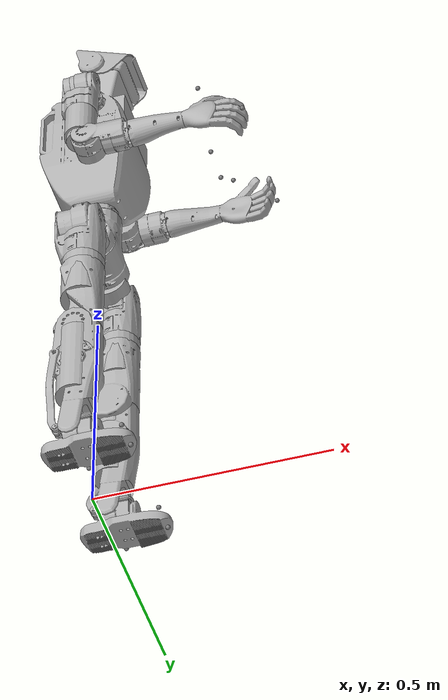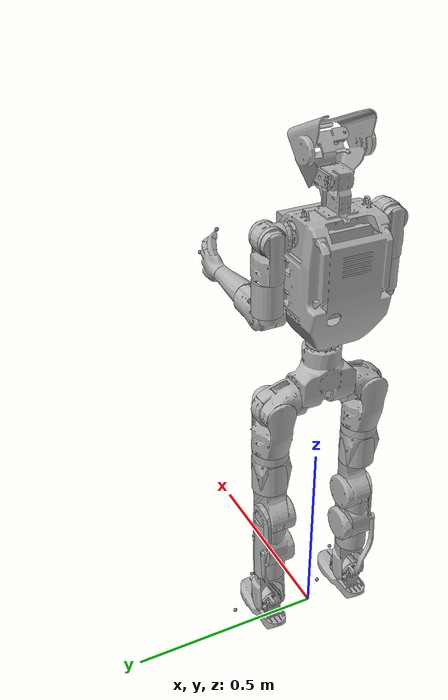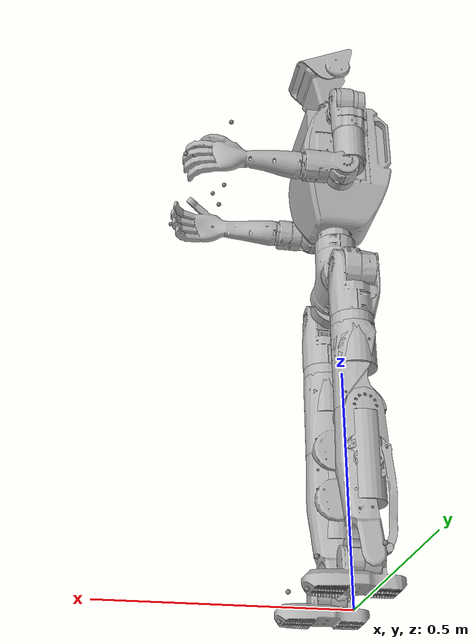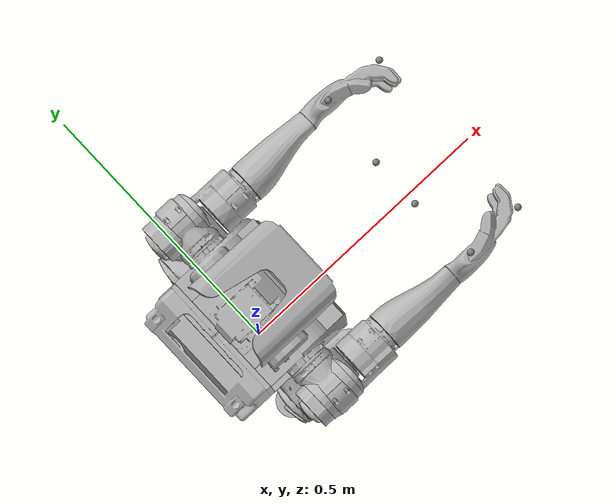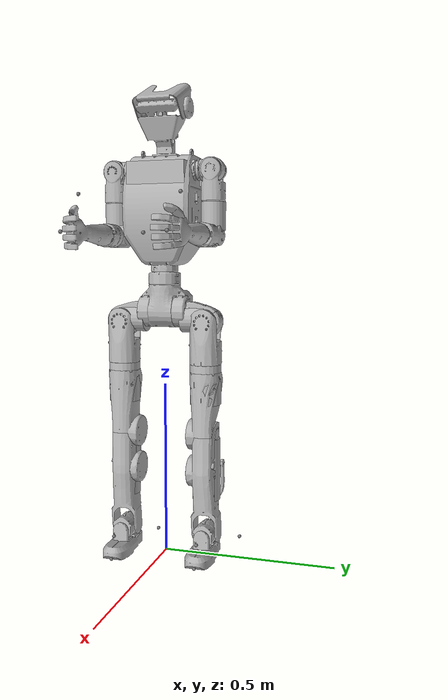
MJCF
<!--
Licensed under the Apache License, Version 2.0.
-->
<?xml version="1.0"?>
<mujoco model="k1">
  <compiler angle="radian"/>
  <asset>
    <mesh name="pelvis" file="meshes/pelvis.stl" scale="0.001 0.001 0.001"/>
    <mesh name="left_hip_pitch_link" file="meshes/left_hip_pitch_link.stl" scale="0.001 0.001 0.001"/>
    <mesh name="left_hip_roll_link" file="meshes/left_hip_roll_link.stl" scale="0.001 0.001 0.001"/>
    <mesh name="left_hip_yaw_link" file="meshes/left_hip_yaw_link.stl" scale="0.001 0.001 0.001"/>
    <mesh name="left_knee_link" file="meshes/left_knee_link.stl" scale="0.001 0.001 0.001"/>
    <mesh name="left_ankle_pitch_link" file="meshes/left_ankle_pitch_link.stl" scale="0.001 0.001 0.001"/>
    <mesh name="left_ankle_roll_link" file="meshes/left_ankle_roll_link.stl" scale="0.001 0.001 0.001"/>
    <mesh name="right_hip_pitch_link" file="meshes/right_hip_pitch_link.stl" scale="0.001 0.001 0.001"/>
    <mesh name="right_hip_roll_link" file="meshes/right_hip_roll_link.stl" scale="0.001 0.001 0.001"/>
    <mesh name="right_hip_yaw_link" file="meshes/right_hip_yaw_link.stl" scale="0.001 0.001 0.001"/>
    <mesh name="right_knee_link" file="meshes/right_knee_link.stl" scale="0.001 0.001 0.001"/>
    <mesh name="right_ankle_pitch_link" file="meshes/right_ankle_pitch_link.stl" scale="0.001 0.001 0.001"/>
    <mesh name="right_ankle_roll_link" file="meshes/right_ankle_roll_link.stl" scale="0.001 0.001 0.001"/>
    <mesh name="torso_link" file="meshes/torso_link.stl" scale="0.001 0.001 0.001"/>
    <mesh name="left_shoulder_pitch_link" file="meshes/left_shoulder_pitch_link.stl" scale="0.001 0.001 0.001"/>
    <mesh name="left_shoulder_roll_link" file="meshes/left_shoulder_roll_link.stl" scale="0.001 0.001 0.001"/>
    <mesh name="left_shoulder_yaw_link" file="meshes/left_shoulder_yaw_link.stl" scale="0.001 0.001 0.001"/>
    <mesh name="left_elbow_link" file="meshes/left_elbow_link.stl" scale="0.001 0.001 0.001"/>
    <mesh name="left_wrist_roll_rubber_hand" file="meshes/left_wrist_roll_rubber_hand.stl" scale="0.001 0.001 0.001"/>
    <mesh name="right_shoulder_pitch_link" file="meshes/right_shoulder_pitch_link.stl" scale="0.001 0.001 0.001"/>
    <mesh name="right_shoulder_roll_link" file="meshes/right_shoulder_roll_link.stl" scale="0.001 0.001 0.001"/>
    <mesh name="right_shoulder_yaw_link" file="meshes/right_shoulder_yaw_link.stl" scale="0.001 0.001 0.001"/>
    <mesh name="right_elbow_link" file="meshes/right_elbow_link.stl" scale="0.001 0.001 0.001"/>
    <mesh name="right_wrist_roll_rubber_hand" file="meshes/right_wrist_roll_rubber_hand.stl" scale="0.001 0.001 0.001"/>
  </asset>
  <default>
    <motor ctrllimited="true"/>
  </default>
  <worldbody>
    <body name="pelvis" pos="0 0 0.7955">
      <freejoint name="root"/>
      <site name="base" pos="0 0 0"/>
      <inertial pos="-0.0029264891 0.0000011277553 -0.050315356" mass="3.6118822" fullinertia="0.013106391 0.0091749526 0.007736608 -0.00000023288094 0.00005514559 0"/>
      <geom type="mesh" contype="0" conaffinity="0" group="1" density="0" rgba="0.7 0.7 0.7 1" mesh="pelvis"/>
      <body name="left_hip_pitch_link" pos="0 0.04 -0.081">
        <inertial pos="-0.00114167 0.0794843 -0.0257981" quat="0.905702 0.423521 0.0160237 0.00879741" mass="1.13435" diaginertia="0.00141399 0.00119374 0.00088294"/>
        <joint name="left_hip_pitch_joint" pos="0 0 0" axis="0 1 0" range="-2.4435 2.4435" actuatorfrcrange="-96.9 96.9"/>
        <geom type="mesh" contype="0" conaffinity="0" group="1" density="0" rgba="0.7 0.7 0.7 1" mesh="left_hip_pitch_link"/>
        <geom size="0.04 0.035" pos="0 0.05 -0.02" quat="0.707105 0.707108 0 0" type="cylinder" rgba="0.7 0.7 0.7 1"/>
        <body name="left_hip_roll_link" pos="-0.008 0.085 -0.03">
          <site name="lp" pos="0 0 0"/>
          <inertial pos="0.0145172 -2.95988e-06 -0.0790822" quat="0.706782 0.0269005 0.0270083 0.706403" mass="1.55353" diaginertia="0.00337332 0.00290126 0.00192453"/>
          <joint name="left_hip_roll_joint" pos="0 0 0" axis="1 0 0" range="-0.6109 2.5307" actuatorfrcrange="-96.9 96.9"/>
          <geom type="mesh" contype="0" conaffinity="0" group="1" density="0" rgba="0.7 0.7 0.7 1" mesh="left_hip_roll_link"/>
          <body name="left_hip_yaw_link" pos="0.015 0 -0.0905">
            <inertial pos="-0.00198177 -0.00493634 -0.181142" quat="0.682307 -0.00232409 0.0401855 0.729957" mass="1.89821" diaginertia="0.0115166 0.011087 0.00156953"/>
            <joint name="left_hip_yaw_joint" pos="0 0 0" axis="0 0 1" range="-3.1416 3.1416" actuatorfrcrange="-96.9 96.9"/>
            <geom type="mesh" contype="0" conaffinity="0" group="1" density="0" rgba="0.7 0.7 0.7 1" mesh="left_hip_yaw_link"/>
            <geom size="0.045 0.065" pos="0 0 -0.08" type="cylinder" rgba="0.7 0.7 0.7 1"/>
            <body name="left_knee_link" pos="-0.007 0 -0.2365">
              <site name="lk" pos="0 0 0"/>
              <inertial pos="-0.000387029 0.00314811 -0.12388" quat="0.853952 -0.0105575 0.0253199 0.519629" mass="2.34031" diaginertia="0.0111608 0.0107285 0.00253583"/>
              <joint name="left_knee_joint" pos="0 0 0" axis="0 1 0" range="0 2.3562" actuatorfrcrange="-96.9 96.9"/>
              <geom type="mesh" contype="0" conaffinity="0" group="1" density="0" rgba="0.7 0.7 0.7 1" mesh="left_knee_link"/>
              <geom size="0.04 0.09" pos="0 0 -0.1" type="cylinder" rgba="0.7 0.7 0.7 1"/>
              <body name="left_ankle_pitch_link" pos="0 0 -0.294">
                <inertial pos="0.00580768 4.5621e-05 0.0029163" quat="0.00962261 0.870047 -0.00376924 0.492861" mass="0.557231" diaginertia="0.000425667 0.000378495 0.000314621"/>
                <joint name="left_ankle_pitch_joint" pos="0 0 0" axis="0 1 0" range="-0.7854 0.7854" actuatorfrcrange="-96.9 96.9"/>
                <geom type="mesh" contype="0" conaffinity="0" group="1" density="0" rgba="0.7 0.7 0.7 1" mesh="left_ankle_pitch_link"/>
                <body name="left_ankle_roll_link">
                  <site name="la" pos="0 0 0"/>
                  <site name="la_front" pos="0.1 0 0"/>
                  <site name="la_side" pos="0 0.1 0"/>
                  <site name="la_top" pos="0 0 0.1"/>

                  <site name="lf" pos="0 0 0"/>
                  <inertial pos="0.0346041 4.98757e-06 -0.0409511" quat="-9.07351e-05 0.719451 -0.000144148 0.694543" mass="0.661644" diaginertia="0.00172457 0.00164184 0.000430026"/>
                  <joint name="left_ankle_roll_joint" pos="0 0 0" axis="1 0 0" range="-0.5236 0.5236" actuatorfrcrange="-47.3 47.3"/>
                  <geom type="mesh" contype="0" conaffinity="0" group="1" density="0" rgba="0.7 0.7 0.7 1" mesh="left_ankle_roll_link"/>
                  <geom type="mesh" rgba="0.7 0.7 0.7 1" mesh="left_ankle_roll_link"/>
                  <body name="left_toe_link" pos="0.12 0 -0.06">
                    <site name="lt" pos="0 0 0"/>
                  </body>

                </body>
              </body>
            </body>
          </body>
        </body>
      </body>
      <body name="right_hip_pitch_link" pos="0 -0.04 -0.081">
        <inertial pos="-0.00114135 -0.0794886 -0.0257925" quat="0.423357 0.905775 -0.00904231 -0.0161225" mass="1.13435" diaginertia="0.00141415 0.00119382 0.000882961"/>
        <joint name="right_hip_pitch_joint" pos="0 0 0" axis="0 1 0" range="-2.4435 2.4435" actuatorfrcrange="-96.9 96.9"/>
        <geom type="mesh" contype="0" conaffinity="0" group="1" density="0" rgba="0.7 0.7 0.7 1" mesh="right_hip_pitch_link"/>
        <geom size="0.04 0.035" pos="0 -0.05 -0.02" quat="0.707105 0.707108 0 0" type="cylinder" rgba="0.7 0.7 0.7 1"/>
        <body name="right_hip_roll_link" pos="-0.008 -0.085 -0.03">
          <site name="rp" pos="0 0 0"/>
          <inertial pos="0.0145172 -2.95988e-06 -0.0790822" quat="0.70676 0.0270101 0.0268835 0.706426" mass="1.55353" diaginertia="0.00337359 0.00290126 0.00192425"/>
          <joint name="right_hip_roll_joint" pos="0 0 0" axis="1 0 0" range="-2.5307 0.6109" actuatorfrcrange="-96.9 96.9"/>
          <geom type="mesh" contype="0" conaffinity="0" group="1" density="0" rgba="0.7 0.7 0.7 1" mesh="right_hip_roll_link"/>
          <body name="right_hip_yaw_link" pos="0.015 0 -0.0905">
            <inertial pos="-0.0019798 0.00493716 -0.181143" quat="0.730121 0.0402448 -0.00224122 0.682128" mass="1.89821" diaginertia="0.0115166 0.0110869 0.00156957"/>
            <joint name="right_hip_yaw_joint" pos="0 0 0" axis="0 0 1" range="-3.1416 3.1416" actuatorfrcrange="-96.9 96.9"/>
            <geom type="mesh" contype="0" conaffinity="0" group="1" density="0" rgba="0.7 0.7 0.7 1" mesh="right_hip_yaw_link"/>
            <geom size="0.045 0.065" pos="0 0 -0.08" type="cylinder" rgba="0.7 0.7 0.7 1"/>
            <body name="right_knee_link" pos="-0.007 0 -0.2365">
              <site name="rk" pos="0 0 0"/>
              <inertial pos="-0.000387029 -0.00314811 -0.12388" quat="0.519629 0.0253199 -0.0105575 0.853952" mass="2.34031" diaginertia="0.0111608 0.0107285 0.00253583"/>
              <joint name="right_knee_joint" pos="0 0 0" axis="0 1 0" range="0 2.3562" actuatorfrcrange="-96.9 96.9"/>
              <geom type="mesh" contype="0" conaffinity="0" group="1" density="0" rgba="0.7 0.7 0.7 1" mesh="right_knee_link"/>
              <geom size="0.04 0.09" pos="0 0 -0.1" type="cylinder" rgba="0.7 0.7 0.7 1"/>
              <body name="right_ankle_pitch_link" pos="0 0 -0.294">
                <inertial pos="0.00580768 -4.5621e-05 0.0029163" quat="-0.00962261 0.870047 0.00376924 0.492861" mass="0.557231" diaginertia="0.000425667 0.000378495 0.000314621"/>
                <joint name="right_ankle_pitch_joint" pos="0 0 0" axis="0 1 0" range="-0.7854 0.7854" actuatorfrcrange="-96.9 96.9"/>
                <geom type="mesh" contype="0" conaffinity="0" group="1" density="0" rgba="0.7 0.7 0.7 1" mesh="right_ankle_pitch_link"/>
                <body name="right_ankle_roll_link">
                  <site name="ra" pos="0 0 0"/>
                  <site name="ra_front" pos="0.1 0 0"/>
                  <site name="ra_side" pos="0 0.1 0"/>
                  <site name="ra_top" pos="0 0 0.1"/>

                  <site name="rf" pos="0 0 0"/>
                  <inertial pos="0.0346041 4.98757e-06 -0.0409511" quat="-9.07351e-05 0.719451 -0.000144148 0.694543" mass="0.661644" diaginertia="0.00172457 0.00164184 0.000430026"/>
                  <joint name="right_ankle_roll_joint" pos="0 0 0" axis="1 0 0" range="-0.5236 0.5236" actuatorfrcrange="-47.3 47.3"/>
                  <geom type="mesh" contype="0" conaffinity="0" group="1" density="0" rgba="0.7 0.7 0.7 1" mesh="right_ankle_roll_link"/>
                  <geom type="mesh" rgba="0.7 0.7 0.7 1" mesh="right_ankle_roll_link"/>
                  <body name="right_toe_link" pos="0.12 0 -0.06">
                    <site name="rt" pos="0 0 0"/>
                  </body>
                </body>
              </body>
            </body>
          </body>
        </body>
      </body>
      <body name="torso_link">
        <site name="spine" pos="0 0 0"/>
        <inertial pos="-0.00774147 -0.00326454 0.232144" quat="0.999682 -0.00710387 -0.0163129 0.0178466" mass="9.34446" diaginertia="0.134855 0.114839 0.0553219"/>
        <joint name="waist_yaw_joint" pos="0 0 0" axis="0 0 1" range="-6.2832 6.2832" actuatorfrcrange="-96.9 96.9"/>
        <geom type="mesh" contype="0" conaffinity="0" group="1" density="0" rgba="0.7 0.7 0.7 1" mesh="torso_link"/>
        <geom size="0.075 0.085 0.1" pos="0 0 0.24" type="box" rgba="0.7 0.7 0.7 1"/>
        <body name="left_shoulder_pitch_link" pos="0.0015 0.069 0.319">
          <inertial pos="-0.00286054 0.0735648 4.02891e-07" quat="0.704642 0.707041 0.0314873 0.050808" mass="0.607426" diaginertia="0.000353634 0.000348389 0.000299886"/>
          <joint name="left_shoulder_pitch_joint" pos="0 0 0" axis="0 1 0" range="-3.1416 3.1416" actuatorfrcrange="-47.3 47.3"/>
          <geom type="mesh" contype="0" conaffinity="0" group="1" density="0" rgba="0.7 0.7 0.7 1" mesh="left_shoulder_pitch_link"/>
          <geom size="0.032 0.025" pos="0 0.075 0" quat="0.707107 0 0.707107 0" type="cylinder" rgba="0.7 0.7 0.7 1"/>
          <body name="left_shoulder_roll_link" pos="-0.005 0.077 0">
            <site name="ls" pos="0 0 0"/>
            <inertial pos="-0.000859887 -1.40133e-06 -0.0626681" quat="0.704831 0.0579209 0.0578806 0.704634" mass="0.767619" diaginertia="0.00093811 0.000760352 0.000524317"/>
            <joint name="left_shoulder_roll_joint" pos="0 0 0" axis="1 0 0" range="0 3.1416" actuatorfrcrange="-47.3 47.3"/>
            <geom type="mesh" contype="0" conaffinity="0" group="1" density="0" rgba="0.7 0.7 0.7 1" mesh="left_shoulder_roll_link"/>
            <geom size="0.035 0.04" pos="0 0 -0.13" type="cylinder" rgba="0.7 0.7 0.7 1"/>
            <body name="left_shoulder_yaw_link" pos="0 0 -0.0687">
              <inertial pos="0.0124097 -0.00401596 -0.103721" quat="0.786278 -0.115386 -0.081558 0.601499" mass="0.694627" diaginertia="0.000767625 0.000749044 0.000326924"/>
              <joint name="left_shoulder_yaw_joint" pos="0 0 0" axis="0 0 1" range="-3.1416 3.1416" actuatorfrcrange="-47.3 47.3"/>
              <geom type="mesh" contype="0" conaffinity="0" group="1" density="0" rgba="0.7 0.7 0.7 1" mesh="left_shoulder_yaw_link"/>
              <body name="left_elbow_link" pos="0.016 -0.007 -0.1153">
                <site name="le" pos="0 0 0"/>
                <inertial pos="0.0655204 0.00412184 3.49023e-06" quat="0.146859 0.690714 -0.151773 0.6916" mass="0.668955" diaginertia="0.000649087 0.000642144 0.000318504"/>
                <joint name="left_elbow_joint" pos="0 0 0" axis="0 1 0" range="-0.7854 2.1817" actuatorfrcrange="-47.3 47.3"/>
                <geom type="mesh" contype="0" conaffinity="0" group="1" density="0" rgba="0.7 0.7 0.7 1" mesh="left_elbow_link"/>
                <body name="left_wrist_roll_rubber_hand" pos="0.0687 0 0">
                  <body name="left_wrist" pos="0.15 0 0">
                    <site name="lw" pos="0 0 0"/>
                    <site name="lh" pos="0.03 0 0"/>
                    <site name="lh_top" pos="0.03 0 0.1"/>
                    <site name="lh_front" pos="0.13 0 0"/>
                    <site name="lh_palmar" pos="0.03 -0.1 0"/>
                  </body>
                  <inertial pos="0.140765 0.000524863 0.000403934" quat="0.514105 0.508062 0.501666 0.475288" mass="0.369" diaginertia="0.00241848 0.00235614 0.000197995"/>
                  <joint name="left_wrist_roll_joint" pos="0 0 0" axis="1 0 0" range="-3.1416 3.1416" actuatorfrcrange="-47.3 47.3"/>
                  <geom type="mesh" contype="0" conaffinity="0" group="1" density="0" rgba="0.7 0.7 0.7 1" mesh="left_wrist_roll_rubber_hand"/>
                  <geom type="mesh" rgba="0.7 0.7 0.7 1" mesh="left_wrist_roll_rubber_hand"/>
                </body>
              </body>
            </body>
          </body>
        </body>
        <body name="right_shoulder_pitch_link" pos="0.0015 -0.069 0.319">
          <inertial pos="-0.00286054 -0.0735631 7.49207e-06" quat="0.703948 0.707361 -0.0229531 -0.0597568" mass="0.607426" diaginertia="0.000353645 0.000348371 0.000299878"/>
          <joint name="right_shoulder_pitch_joint" pos="0 0 0" axis="0 1 0" range="-3.1416 3.1416" actuatorfrcrange="-47.3 47.3"/>
          <geom type="mesh" contype="0" conaffinity="0" group="1" density="0" rgba="0.7 0.7 0.7 1" mesh="right_shoulder_pitch_link"/>
          <geom size="0.032 0.025" pos="0 -0.075 0" quat="0.707107 0 0.707107 0" type="cylinder" rgba="0.7 0.7 0.7 1"/>
          <body name="right_shoulder_roll_link" pos="-0.005 -0.077 0">
            <site name="rs" pos="0 0 0"/>
            <inertial pos="-0.000859887 -1.40133e-06 -0.0626681" quat="0.704831 0.0579209 0.0578806 0.704634" mass="0.767619" diaginertia="0.00093811 0.000760352 0.000524318"/>
            <joint name="right_shoulder_roll_joint" pos="0 0 0" axis="1 0 0" range="-3.1416 0" actuatorfrcrange="-47.3 47.3"/>
            <geom type="mesh" contype="0" conaffinity="0" group="1" density="0" rgba="0.7 0.7 0.7 1" mesh="right_shoulder_roll_link"/>
            <geom size="0.035 0.04" pos="0 0 -0.13" type="cylinder" rgba="0.7 0.7 0.7 1"/>
            <body name="right_shoulder_yaw_link" pos="0 0 -0.0687">
              <inertial pos="0.0124097 0.00401596 -0.103721" quat="0.601499 -0.081558 -0.115386 0.786278" mass="0.694627" diaginertia="0.000767625 0.000749044 0.000326924"/>
              <joint name="right_shoulder_yaw_joint" pos="0 0 0" axis="0 0 1" range="-3.1416 3.1416" actuatorfrcrange="-47.3 47.3"/>
              <geom type="mesh" contype="0" conaffinity="0" group="1" density="0" rgba="0.7 0.7 0.7 1" mesh="right_shoulder_yaw_link"/>
              <body name="right_elbow_link" pos="0.016 0.007 -0.1153">
                <site name="re" pos="0 0 0"/>
                <inertial pos="0.0655204 -0.00412184 -3.49023e-06" quat="-0.151773 0.6916 0.146859 0.690714" mass="0.668955" diaginertia="0.000649087 0.000642144 0.000318504"/>
                <joint name="right_elbow_joint" pos="0 0 0" axis="0 1 0" range="-0.7854 2.1817" actuatorfrcrange="-47.3 47.3"/>
                <geom type="mesh" contype="0" conaffinity="0" group="1" density="0" rgba="0.7 0.7 0.7 1" mesh="right_elbow_link"/>
                <body name="right_wrist_roll_rubber_hand" pos="0.0687 0 0">
                  <body name="right_wrist" pos="0.15 0 0">
                    <site name="rw" pos="0 0 0"/>
                    <site name="rh" pos="0.03 0 0"/>
                    <site name="rh_top" pos="0.03 0 0.1"/>
                    <site name="rh_front" pos="0.13 0 0"/>
                    <site name="rh_palmar" pos="0.03 0.1 0"/>
                  </body>
                  <inertial pos="0.140765 -0.000524858 0.000403934" quat="0.475288 0.501666 0.508062 0.514105" mass="0.369" diaginertia="0.00241848 0.00235614 0.000197995"/>
                  <joint name="right_wrist_roll_joint" pos="0 0 0" axis="1 0 0" range="-3.1416 3.1416" actuatorfrcrange="-47.3 47.3"/>
                  <geom type="mesh" contype="0" conaffinity="0" group="1" density="0" rgba="0.7 0.7 0.7 1" mesh="right_wrist_roll_rubber_hand"/>
                  <geom type="mesh" rgba="0.7 0.7 0.7 1" mesh="right_wrist_roll_rubber_hand"/>
                </body>
              </body>
            </body>
          </body>
        </body>
      </body>
    </body>
  </worldbody>
  <actuator>
    <motor name="left_hip_pitch_joint" joint="left_hip_pitch_joint" gear="1.0" ctrlrange="-96.9 96.9"/>
    <motor name="left_hip_roll_joint" joint="left_hip_roll_joint" gear="1.0" ctrlrange="-96.9 96.9"/>
    <motor name="left_hip_yaw_joint" joint="left_hip_yaw_joint" gear="1.0" ctrlrange="-96.9 96.9"/>
    <motor name="left_knee_joint" joint="left_knee_joint" gear="1.0" ctrlrange="-96.9 96.9"/>
    <motor name="left_ankle_pitch_joint" joint="left_ankle_pitch_joint" gear="1.0" ctrlrange="-96.9 96.9"/>
    <motor name="left_ankle_roll_joint" joint="left_ankle_roll_joint" gear="1.0" ctrlrange="-47.3 47.3"/>

    <motor name="right_hip_pitch_joint" joint="right_hip_pitch_joint" gear="1.0" ctrlrange="-96.9 96.9"/>
    <motor name="right_hip_roll_joint" joint="right_hip_roll_joint" gear="1.0" ctrlrange="-96.9 96.9"/>
    <motor name="right_hip_yaw_joint" joint="right_hip_yaw_joint" gear="1.0" ctrlrange="-96.9 96.9"/>
    <motor name="right_knee_joint" joint="right_knee_joint" gear="1.0" ctrlrange="-96.9 96.9"/>
    <motor name="right_ankle_pitch_joint" joint="right_ankle_pitch_joint" gear="1.0" ctrlrange="-96.9 96.9"/>
    <motor name="right_ankle_roll_joint" joint="right_ankle_roll_joint" gear="1.0" ctrlrange="-47.3 47.3"/>

    <motor name="waist_yaw_joint" joint="waist_yaw_joint" gear="1.0" ctrlrange="-96.9 96.9"/>

    <motor name="left_shoulder_pitch_joint" joint="left_shoulder_pitch_joint" gear="1.0" ctrlrange="-47.3 47.3"/>
    <motor name="left_shoulder_roll_joint" joint="left_shoulder_roll_joint" gear="1.0" ctrlrange="-47.3 47.3"/>
    <motor name="left_shoulder_yaw_joint" joint="left_shoulder_yaw_joint" gear="1.0" ctrlrange="-47.3 47.3"/>
    <motor name="left_elbow_joint" joint="left_elbow_joint" gear="1.0" ctrlrange="-47.3 47.3"/>
    <motor name="left_wrist_roll_joint" joint="left_wrist_roll_joint" gear="1.0" ctrlrange="-47.3 47.3"/>

    <motor name="right_shoulder_pitch_joint" joint="right_shoulder_pitch_joint" gear="1.0" ctrlrange="-47.3 47.3"/>
    <motor name="right_shoulder_roll_joint" joint="right_shoulder_roll_joint" gear="1.0" ctrlrange="-47.3 47.3"/>
    <motor name="right_shoulder_yaw_joint" joint="right_shoulder_yaw_joint" gear="1.0" ctrlrange="-47.3 47.3"/>
    <motor name="right_elbow_joint" joint="right_elbow_joint" gear="1.0" ctrlrange="-47.3 47.3"/>
    <motor name="right_wrist_roll_joint" joint="right_wrist_roll_joint" gear="1.0" ctrlrange="-47.3 47.3"/>
  </actuator>
</mujoco>
